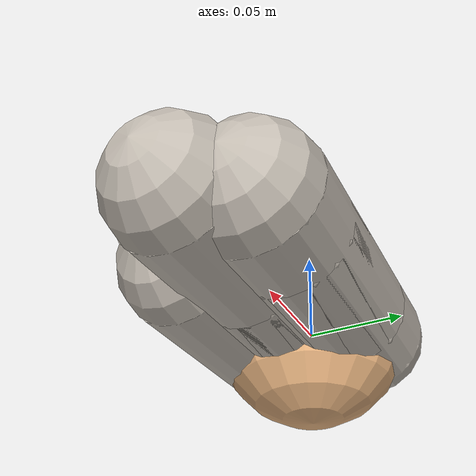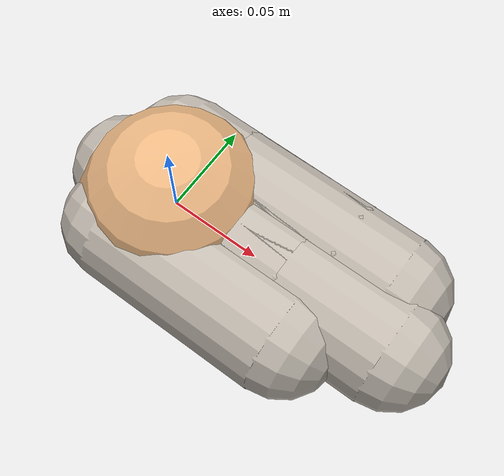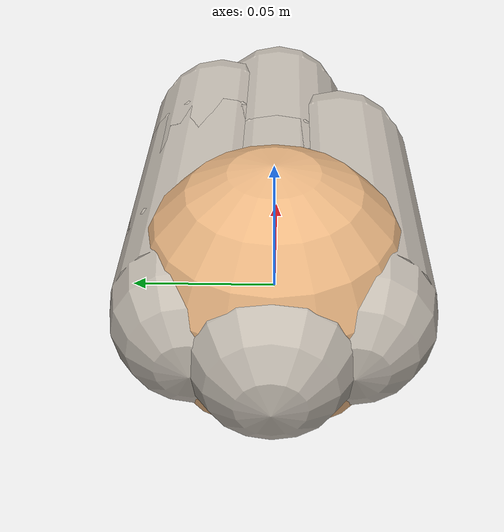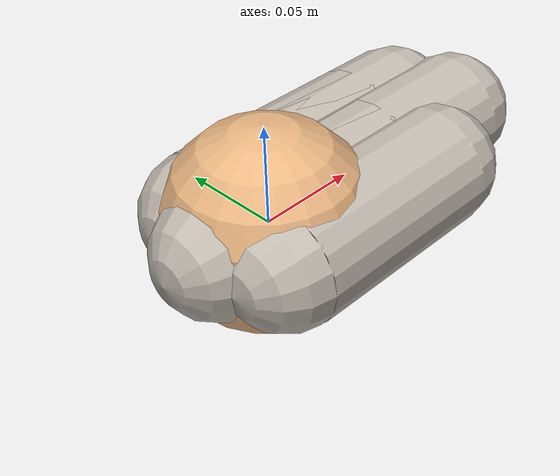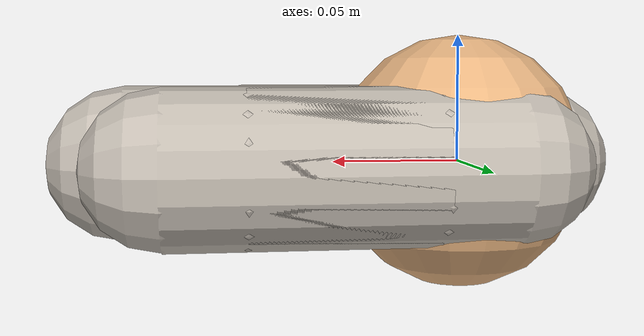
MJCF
<mujoco model="complete_scene">
  <include file="../hands/humanoid_hand.xml"/>
  <!-- plus de cube ni de table -->

  <option timestep="0.002" gravity="0 0 -9.81"/>

  <asset>
    <texture name="skin" type="2d" file="../textures/skin.png"/>
  </asset>

  <worldbody>
    <!-- Caméra au-dessus qui regarde le centre -->
    <camera name="main_cam" pos="0 0 1.5" quat="1 0 0 0"/>
    <light name="sun" directional="true" pos="0 0 2" dir="0 0 -1" diffuse="1 1 1"/>

    <!-- Main seule, bien au centre et en hauteur -->
    <body name="hand_anchor" pos="0 0 0.6">
      <body name="humanoid_hand" pos="0 0 0"/>
    </body>
  </worldbody>
</mujoco>

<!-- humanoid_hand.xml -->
<mujoco model="humanoid_hand">
  <asset>
    <texture name="skin_tex" type="2d" file="../textures/skin.png"/>
    <material name="skin_mat" texture="skin_tex" specular="0.1"/>
  </asset>
  <worldbody>
    <body name="palm" pos="0 0 0">
      <geom name="palm_geom" type="sphere" size="0.05" rgba="0.9 0.7 0.5 1" material="skin_mat"/>

      <body name="finger1" pos="0.03 0 0">
        <joint name="finger1_joint" type="hinge" axis="0 1 0" range="-2.0 2.0" damping="1"/>
        <geom type="capsule" fromto="0 0 0 0.10 0 0" size="0.03" material="skin_mat"/>
      </body>
      <body name="finger2" pos="0.015 0.026 0">
        <joint name="finger2_joint" type="hinge" axis="0 1 0" range="-2.0 2.0" damping="1"/>
        <geom type="capsule" fromto="0 0 0 0.10 0 0" size="0.03" material="skin_mat"/>
      </body>
      <body name="finger3" pos="-0.015 0.026 0">
        <joint name="finger3_joint" type="hinge" axis="0 1 0" range="-2.0 2.0" damping="1"/>
        <geom type="capsule" fromto="0 0 0 0.10 0 0" size="0.03" material="skin_mat"/>
      </body>
      <body name="finger4" pos="-0.03 0 0">
        <joint name="finger4_joint" type="hinge" axis="0 1 0" range="-2.0 2.0" damping="1"/>
        <geom type="capsule" fromto="0 0 0 0.10 0 0" size="0.03" material="skin_mat"/>
      </body>
      <body name="finger5" pos="-0.015 -0.026 0">
        <joint name="finger5_joint" type="hinge" axis="0 1 0" range="-2.0 2.0" damping="1"/>
        <geom type="capsule" fromto="0 0 0 0.10 0 0" size="0.03" material="skin_mat"/>
      </body>
    </body>
  </worldbody>
  <actuator>
    <motor name="m1" joint="finger1_joint" gear="50" ctrlrange="-1 1"/>
    <motor name="m2" joint="finger2_joint" gear="50" ctrlrange="-1 1"/>
    <motor name="m3" joint="finger3_joint" gear="50" ctrlrange="-1 1"/>
    <motor name="m4" joint="finger4_joint" gear="50" ctrlrange="-1 1"/>
    <motor name="m5" joint="finger5_joint" gear="50" ctrlrange="-1 1"/>
  </actuator>
</mujoco>
